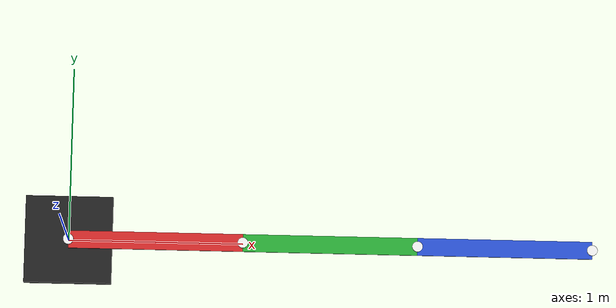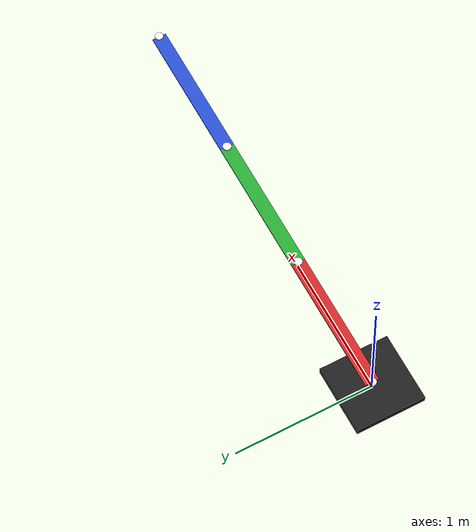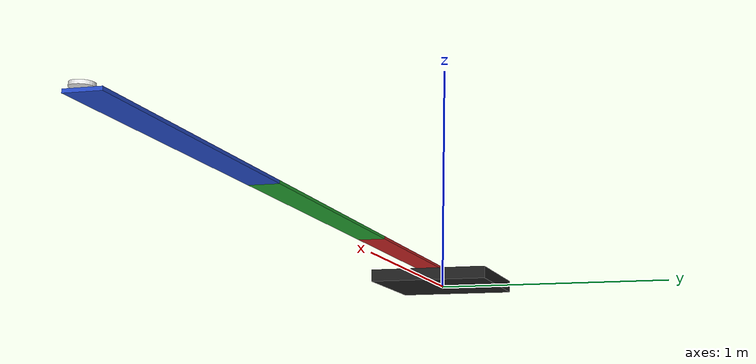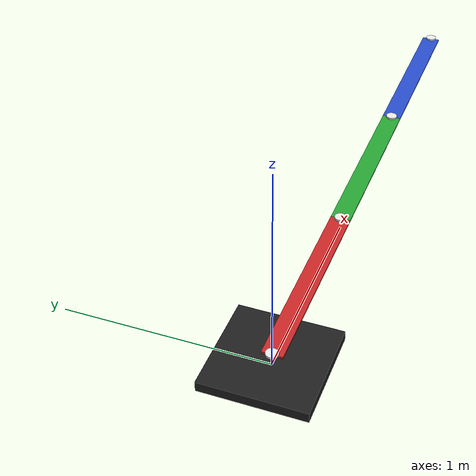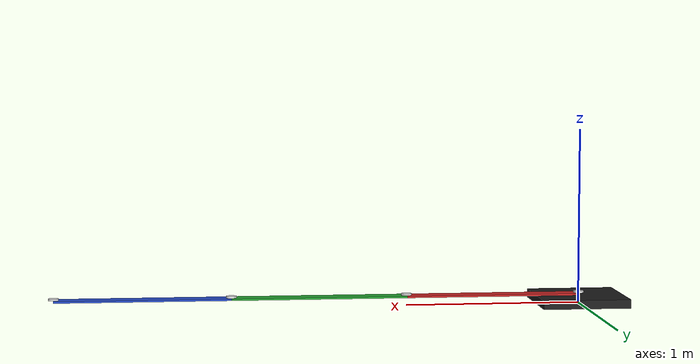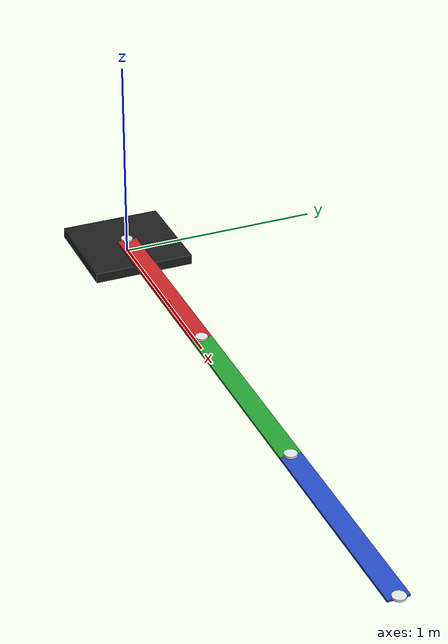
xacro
<?xml version="1.0"?>
<!-- Revolute-Revolute Manipulator -->
<robot name="planar_3dof" xmlns:xacro="http://www.ros.org/wiki/xacro">

  <!-- Constants for robot dimensions -->
  <xacro:property name="PI" value="3.1415926535897931"/>
  <xacro:property name="mass" value="1" /> <!-- arbitrary value for mass -->
  <xacro:property name="P_link_dim" value="0.03" />
  <xacro:property name="link_i_y" value="0.1" />
  <xacro:property name="link_i_z" value="0.01" />
  <xacro:property name="base_xy" value="0.5" /> <!-- BAse x y dimensions -->
  <xacro:property name="base_z" value="0.05" /> <!-- BAse Z dimensions -->
  <xacro:property name="r1" value="1" /> <!-- Link 1 -->
  <xacro:property name="r2" value="1" /> <!-- Link 2 -->
  <xacro:property name="r3" value="1" /> <!-- Link 3 -->
  <xacro:property name="camera_link" value="0.05" /> <!-- Size of square 'camera' box -->
  <xacro:property name="axel_offset" value="0.05" /> <!-- Space btw top of beam and the each joint -->

  <xacro:macro name="box_inertia" params="mass x y z">
    <inertia  ixx="${mass*(y*y+z*z)/12.0}" ixy = "0" ixz = "0"
              iyy="${mass*(x*x+z*z)/12.0}" iyz = "0"
              izz="${mass*(x*x+y*y)/12.0}"
    />
  </xacro:macro>

  <xacro:macro  name="cylinder_inertia" params="mass r l">
      <inertia  ixx="${mass*(3*r*r+l*l)/12}" ixy = "0" ixz = "0"
                iyy="${mass*(3*r*r+l*l)/12}" iyz = "0"
                izz="${mass*(r*r)/2}" />
    </xacro:macro >

  <!-- Import all Gazebo-customization elements, including Gazebo colors -->
  <xacro:include filename="$(find planar_3dof_description)/robot/planar_3dof.gazebo" />
  <!-- Import Rviz colors -->
  <xacro:include filename="$(find planar_3dof_description)/robot/materials.xacro" />

  <!-- Used for fixing robot to Gazebo 'base_link' -->
  <link name="world"/>

  <!-- Base Link -->
  <link name="platform">
    <collision>
      <origin xyz="0 0 ${base_z/2}" rpy="0 0 0"/>
      <geometry>
              <box size="${base_xy} ${base_xy} ${base_z}"/>
      </geometry>
    </collision>

    <visual>
      <origin xyz="0 0 ${base_z/2}" rpy="0 0 0"/>
      <geometry>
              <box size="${base_xy} ${base_xy} ${base_z}"/>
      </geometry>
      <material name="black"/>
    </visual>

    <inertial>
      <origin xyz="0 0 ${base_z/2}" rpy="0 0 0"/>
      <mass value="${mass}"/>
      <xacro:box_inertia mass="${mass}" x="${base_xy}" y="${base_xy}" z="${base_z}"/>
    </inertial>
  </link>

  <joint name="fixed" type="fixed">
    <origin xyz="0 0 0" rpy="0 0 0"/>
    <parent link="world"/>
    <child link="platform"/>
  </joint>

  <link name="P_0">
    <collision>

      <origin xyz="0 0 0" rpy="0 0 0"/>
      <geometry>
              <cylinder length="${link_i_z}" radius="${P_link_dim}"/>
      </geometry>
    </collision>

    <visual>
      <origin xyz="0 0 0.01" rpy="0 0 0"/>
      <geometry>
        <cylinder length="${link_i_z}" radius="${P_link_dim}"/>
      </geometry>
      <material name="white"/>
    </visual>

    <inertial>
      <origin xyz="0 0 0" rpy="0 0 0"/>
      <mass value="0.001"/>
      <xacro:cylinder_inertia mass="${mass}" r="${P_link_dim}" l="${link_i_z}"/>
    </inertial>
  </link>

  <joint name="P0_joint" type="fixed">
    <parent link="platform"/>
    <child link="P_0"/>
    <origin xyz="0 0 ${base_z + link_i_z/2.0}" rpy="0 0 0"/>
  </joint>

  <link name="link1">
    <collision>

      <origin xyz="${r1/2} 0 0" rpy="0 0 0"/>
      <geometry>
              <box size="${r1} ${link_i_y} ${link_i_z}"/>
      </geometry>
    </collision>

    <visual>
      <origin xyz="${r1/2} 0 0" rpy="0 0 0"/>
      <geometry>
        <box size="${r1} ${link_i_y} ${link_i_z}"/>
      </geometry>
      <material name="red"/>
    </visual>

    <inertial>
      <origin xyz="${r1/2} 0 0" rpy="0 0 0"/>
      <mass value="${mass}"/>
      <xacro:box_inertia mass="${mass}" x="${r1}" y="${link_i_y}" z="${link_i_z}"/>
    </inertial>
  </link>

  <joint name="joint1" type="continuous">
    <parent link="P_0"/>
    <child link="link1"/>
    <origin xyz="0 0 0" rpy="0 0 0"/>
    <axis xyz="0 0 1"/>
    <dynamics damping="0.7"/>
  </joint>

  <link name="P_1">
    <collision>

      <origin xyz="0 0 0" rpy="0 0 0"/>
      <geometry>
              <cylinder length="${link_i_z}" radius="${P_link_dim}"/>
      </geometry>
    </collision>

    <visual>
      <origin xyz="0 0 0.01" rpy="0 0 0"/>
      <geometry>
        <cylinder length="${link_i_z}" radius="${P_link_dim}"/>
      </geometry>
      <material name="white"/>
    </visual>

    <inertial>
      <origin xyz="0 0 0" rpy="0 0 0"/>
      <mass value="0.001"/>
      <xacro:cylinder_inertia mass="${mass}" r="${P_link_dim}" l="${link_i_z}"/>
    </inertial>
  </link>

  <joint name="P1_joint" type="fixed">
    <parent link="link1"/>
    <child link="P_1"/>
    <origin xyz="${r1} 0 0" rpy="0 0 0"/>
  </joint>

  <link name="link2">
    <collision>

      <origin xyz="${r2/2} 0 0" rpy="0 0 0"/>
      <geometry>
              <box size="${r2} ${link_i_y} ${link_i_z}"/>
      </geometry>
    </collision>

    <visual>
      <origin xyz="${r2/2} 0 0" rpy="0 0 0"/>
      <geometry>
        <box size="${r2} ${link_i_y} ${link_i_z}"/>
      </geometry>
      <material name="green"/>
    </visual>

    <inertial>
      <origin xyz="${r2/2} 0 0" rpy="0 0 0"/>
      <mass value="${mass}"/>
      <xacro:box_inertia mass="${mass}" x="${r2}" y="${link_i_y}" z="${link_i_z}"/>
    </inertial>
  </link>

  <joint name="joint2" type="continuous">
    <parent link="P_1"/>
    <child link="link2"/>
    <origin xyz="0 0 0" rpy="0 0 0"/>
    <axis xyz="0 0 1"/>
    <dynamics damping="0.7"/>
  </joint>

  <link name="P_2">
    <collision>

      <origin xyz="0 0 0" rpy="0 0 0"/>
      <geometry>
              <cylinder length="${link_i_z}" radius="${P_link_dim}"/>
      </geometry>
    </collision>

    <visual>
      <origin xyz="0 0 0.01" rpy="0 0 0"/>
      <geometry>
        <cylinder length="${link_i_z}" radius="${P_link_dim}"/>
      </geometry>
      <material name="white"/>
    </visual>

    <inertial>
      <origin xyz="0 0 0" rpy="0 0 0"/>
      <mass value="0.001"/>
      <xacro:cylinder_inertia mass="${mass}" r="${P_link_dim}" l="${link_i_z}"/>
    </inertial>
  </link>

  <joint name="P2_joint" type="fixed">
    <parent link="link2"/>
    <child link="P_2"/>
    <origin xyz="${r2} 0 0" rpy="0 0 0"/>
  </joint>

    <link name="link3">
    <collision>

      <origin xyz="${r3/2} 0 0" rpy="0 0 0"/>
      <geometry>
              <box size="${r3} ${link_i_y} ${link_i_z}"/>
      </geometry>
    </collision>

    <visual>
      <origin xyz="${r3/2} 0 0" rpy="0 0 0"/>
      <geometry>
        <box size="${r3} ${link_i_y} ${link_i_z}"/>
      </geometry>
      <material name="blue"/>
    </visual>

    <inertial>
      <origin xyz="${r3/2} 0 0" rpy="0 0 0"/>
      <mass value="${mass}"/>
      <xacro:box_inertia mass="${mass}" x="${r3}" y="${link_i_y}" z="${link_i_z}"/>
    </inertial>
  </link>

  <joint name="joint3" type="continuous">
    <parent link="P_2"/>
    <child link="link3"/>
    <origin xyz="0 0 0" rpy="0 0 0"/>
    <axis xyz="0 0 1"/>
    <dynamics damping="0.7"/>
  </joint>

  <link name="P_3">
    <collision>

      <origin xyz="0 0 0" rpy="0 0 0"/>
      <geometry>
              <cylinder length="${link_i_z}" radius="${P_link_dim}"/>
      </geometry>
    </collision>

    <visual>
      <origin xyz="0 0 0.01" rpy="0 0 0"/>
      <geometry>
        <cylinder length="${link_i_z}" radius="${P_link_dim}"/>
      </geometry>
      <material name="white"/>
    </visual>

    <inertial>
      <origin xyz="0 0 0" rpy="0 0 0"/>
      <mass value="0.001"/>
      <xacro:cylinder_inertia mass="${mass}" r="${P_link_dim}" l="${link_i_z}"/>
    </inertial>
  </link>

  <joint name="P3_joint" type="fixed">
    <parent link="link3"/>
    <child link="P_3"/>
    <origin xyz="${r3} 0 0" rpy="0 0 0"/>
  </joint>

  <transmission name="tran1">
    <type>transmission_interface/SimpleTransmission</type>
    <joint name="joint1">
      <hardwareInterface>EffortJointInterface</hardwareInterface>
    </joint>
    <actuator name="motor1">
      <hardwareInterface>EffortJointInterface</hardwareInterface>
      <mechanicalReduction>1</mechanicalReduction>
    </actuator>
  </transmission>

  <transmission name="tran2">
    <type>transmission_interface/SimpleTransmission</type>
    <joint name="joint2">
      <hardwareInterface>EffortJointInterface</hardwareInterface>
    </joint>
    <actuator name="motor2">
      <hardwareInterface>EffortJointInterface</hardwareInterface>
      <mechanicalReduction>1</mechanicalReduction>
    </actuator>
  </transmission>

  <transmission name="tran3">
    <type>transmission_interface/SimpleTransmission</type>
    <joint name="joint3">
      <hardwareInterface>EffortJointInterface</hardwareInterface>
    </joint>
    <actuator name="motor3">
      <hardwareInterface>EffortJointInterface</hardwareInterface>
      <mechanicalReduction>1</mechanicalReduction>
    </actuator>
  </transmission>

</robot>
